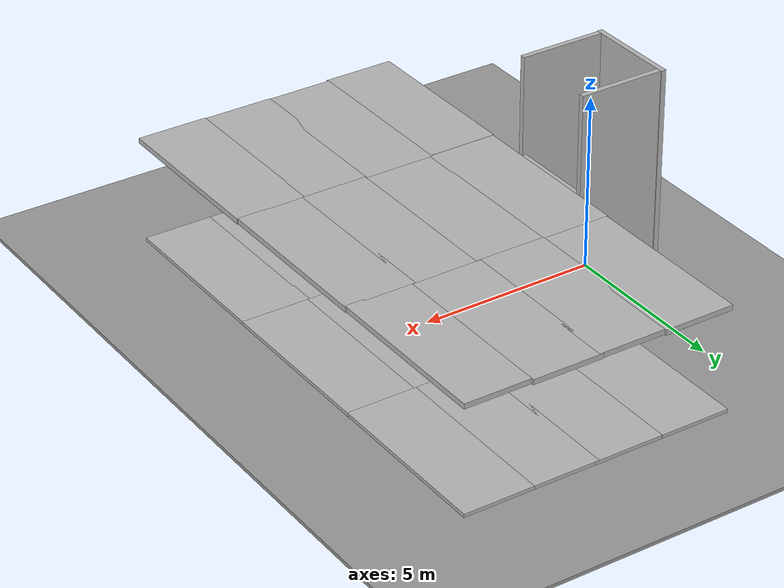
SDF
<sdf version="1.6">
 <world name="default">
  <light name="sun" type="directional">
   <pose>0 0 10 0 -0 0</pose>
   <diffuse>0.8 0.8 0.8 1</diffuse>
   <specular>0.2 0.2 0.2 1</specular>
   <attenuation>
    <range>1000</range>
    <constant>0.9</constant>
    <linear>0.01</linear>
    <quadratic>0.001</quadratic>
   </attenuation>
   <direction>-0.5 0.1 -0.9</direction>
  </light>
  <model name="ground_plane">
   <static>1</static>
   <link name="link">
    <collision name="collision">
     <geometry><plane><normal>0 0 1</normal><size>100 100</size></plane></geometry>
     <surface><friction><ode><mu>100</mu><mu2>50</mu2></ode></friction></surface>
    </collision>
    <visual name="visual">
     <cast_shadows>0</cast_shadows>
     <geometry><plane><normal>0 0 1</normal><size>100 100</size></plane></geometry>
     <material>
      <script><uri>file://media/materials/scripts/gazebo.material</uri><name>Gazebo/Grey</name></script>
     </material>
    </visual>
   </link>
  </model>
  <plugin name="elevator_event_plugin" filename="libSimEventsPlugin.so">
   <region><name>region1</name><volume><min>1.5 -1 0</min><max>2.5 1 1</max></volume></region>
   <region><name>region2</name><volume><min>1.5 -1 3</min><max>2.5 1 4</max></volume></region>
   <event>
    <name>region1_event</name>
    <type>occupied</type>
    <region>region1</region>
    <topic>~/elevator</topic>
    <msg_data>0</msg_data>
   </event>
   <event>
    <name>region2_event</name>
    <type>occupied</type>
    <region>region2</region>
    <topic>~/elevator</topic>
    <msg_data>1</msg_data>
   </event>
  </plugin>
  <model name="elevator">
   <pose>-0 0 0.075 0 -0 2e-06</pose>
   <link name="link">
    <inertial>
     <mass>800</mass>
     <inertia><ixx>1</ixx><ixy>0</ixy><ixz>0</ixz><iyy>1</iyy><iyz>0</iyz><izz>1</izz></inertia>
    </inertial>
    <collision name="floor_collision"><geometry><box><size>2.25 2.25 0.15</size></box></geometry></collision>
    <visual name="floor_visual"><geometry><box><size>2.25 2.25 0.15</size></box></geometry></visual>
    <collision name="wall1_collision">
     <pose>1.0745 0.5725 1.125 0 -0 0</pose>
     <geometry><box><size>0.1 1.15 2.25</size></box></geometry>
    </collision>
    <visual name="wall1_visual">
     <pose>1.0745 0.5725 1.125 0 -0 0</pose>
     <geometry><box><size>0.1 1.15 2.25</size></box></geometry>
     <material><script><name>Gazebo/Red</name><uri>__default__</uri></script></material>
    </visual>
    <collision name="wall2_collision">
     <pose>1.0745 -1.0625 1.125 0 -0 0</pose>
     <geometry><box><size>0.1 0.125 2.25</size></box></geometry>
    </collision>
    <visual name="wall2_visual">
     <pose>1.0745 -1.0625 1.125 0 -0 0</pose>
     <geometry><box><size>0.1 0.125 2.25</size></box></geometry>
     <material><script><name>Gazebo/Red</name><uri>__default__</uri></script></material>
    </visual>
   </link>
   <link name="door">
    <pose>1.0745 -0.5 1.125 0 -0 0</pose>
    <collision name="collision"><geometry><box><size>0.08 1 2.25</size></box></geometry></collision>
    <visual name="visual"><geometry><box><size>0.08 1 2.25</size></box></geometry></visual>
    <inertial>
     <inertia><ixx>1</ixx><ixy>0</ixy><ixz>0</ixz><iyy>1</iyy><iyz>0</iyz><izz>1</izz></inertia>
     <mass>1</mass>
    </inertial>
   </link>
   <joint name="door" type="prismatic">
    <parent>link</parent>
    <child>door</child>
    <axis>
     <xyz>0 1 0</xyz>
     <limit><lower>0</lower><upper>1</upper><effort>10</effort></limit>
     <dynamics>
      <damping>2</damping>
      <spring_reference>0</spring_reference>
      <spring_stiffness>0</spring_stiffness>
     </dynamics>
     <use_parent_model_frame>0</use_parent_model_frame>
    </axis>
   </joint>
   <joint name="lift" type="prismatic">
    <parent>world</parent>
    <child>link</child>
    <axis>
     <xyz>0 0 1</xyz>
     <limit><lower>0</lower><upper>10</upper><effort>100000</effort></limit>
     <dynamics>
      <damping>50</damping>
      <spring_reference>0</spring_reference>
      <spring_stiffness>0</spring_stiffness>
     </dynamics>
     <use_parent_model_frame>0</use_parent_model_frame>
    </axis>
    <physics>
     <ode><implicit_spring_damper>1</implicit_spring_damper><limit><cfm>0</cfm><erp>0.2</erp></limit></ode>
    </physics>
   </joint>
   <plugin name="elevator_plugin" filename="libgazebo_ros_elevator.so">
    <lift_joint>elevator::lift</lift_joint>
    <door_joint>elevator::door</door_joint>
    <floor_height>3.075</floor_height>
    <door_wait_time>10</door_wait_time>
    <topic>elevator</topic>
   </plugin>
  </model>
  <model name="elevator_shaft">
   <static>1</static>
   <link name="link">
    <collision name="shaft_wall1_collision">
     <pose>0 1.25 3 0 -0 0</pose>
     <geometry><box><size>2.5 0.15 6</size></box></geometry>
    </collision>
    <visual name="shaft_wall1_visual">
     <pose>0 1.25 3 0 -0 0</pose>
     <geometry><box><size>2.5 0.15 6</size></box></geometry>
    </visual>
    <collision name="shaft_wall2_collision">
     <pose>0 -1.25 3 0 -0 0</pose>
     <geometry><box><size>2.5 0.15 6</size></box></geometry>
    </collision>
    <visual name="shaft_wall2_visual">
     <pose>0 -1.25 3 0 -0 0</pose>
     <geometry><box><size>2.5 0.15 6</size></box></geometry>
    </visual>
    <collision name="shaft_wall3_collision">
     <pose>-1.25 0 3 0 -0 0</pose>
     <geometry><box><size>0.15 2.7 6</size></box></geometry>
    </collision>
    <visual name="shaft_wall3_visual">
     <pose>-1.25 0 3 0 -0 0</pose>
     <geometry><box><size>0.15 2.7 6</size></box></geometry>
    </visual>
    <collision name="floor0_collision">
     <pose>1.19 0 0.075 0 -0 0</pose>
     <geometry><box><size>0.12 2.5 0.15</size></box></geometry>
    </collision>
    <visual name="floor0_visual">
     <pose>1.19 0 0.075 0 -0 0</pose>
     <geometry><box><size>0.12 2.5 0.15</size></box></geometry>
    </visual>
    <collision name="floor1_collision">
     <pose>1.19 0 3.075 0 -0 0</pose>
     <geometry><box><size>0.12 2.5 0.15</size></box></geometry>
    </collision>
    <visual name="floor1_visual">
     <pose>1.19 0 3.075 0 -0 0</pose>
     <geometry><box><size>0.12 2.5 0.15</size></box></geometry>
    </visual>
   </link>
  </model>
  <model name="floor0">
   <pose>2.25 0 0.075 0 -0 0</pose>
   <static>1</static>
   <link name="link">
    <collision name="floor_collision"><geometry><box><size>2 5 0.15</size></box></geometry></collision>
    <visual name="floor_visual"><geometry><box><size>2 5 0.15</size></box></geometry></visual>
   </link>
  </model>
  <model name="floor1">
   <pose>2.25 0 3.075 0 -0 0</pose>
   <static>1</static>
   <link name="link">
    <collision name="floor_collision"><geometry><box><size>2 5 0.15</size></box></geometry></collision>
    <visual name="floor_visual"><geometry><box><size>2 5 0.15</size></box></geometry></visual>
   </link>
  </model>
  <gravity>0 0 -9.8</gravity>
  <magnetic_field>6e-06 2.3e-05 -4.2e-05</magnetic_field>
  <atmosphere type="adiabatic"/>
  <physics name="default_physics" default="0" type="ode">
   <max_step_size>0.001</max_step_size>
   <real_time_factor>1</real_time_factor>
   <real_time_update_rate>1000</real_time_update_rate>
  </physics>
  <scene><ambient>0.4 0.4 0.4 1</ambient><background>0.7 0.7 0.7 1</background><shadows>1</shadows></scene>
  <spherical_coordinates>
   <surface_model>EARTH_WGS84</surface_model>
   <latitude_deg>0</latitude_deg>
   <longitude_deg>0</longitude_deg>
   <elevation>0</elevation>
   <heading_deg>0</heading_deg>
  </spherical_coordinates>
  <model name="floor0_clone">
   <pose>4.17189 -0.007585 0.075 0 -0 0</pose>
   <static>1</static>
   <link name="link">
    <collision name="floor_collision"><geometry><box><size>2 5 0.15</size></box></geometry></collision>
    <visual name="floor_visual"><geometry><box><size>2 5 0.15</size></box></geometry></visual>
   </link>
  </model>
  <model name="floor0_clone_0">
   <pose>2.24536 -4.98703 0.075 0 -0 0</pose>
   <static>1</static>
   <link name="link">
    <collision name="floor_collision"><geometry><box><size>2 5 0.15</size></box></geometry></collision>
    <visual name="floor_visual"><geometry><box><size>2 5 0.15</size></box></geometry></visual>
   </link>
  </model>
  <model name="floor0_clone_0_clone">
   <pose>4.19308 -4.97596 0.075 0 -0 0</pose>
   <static>1</static>
   <link name="link">
    <collision name="floor_collision"><geometry><box><size>2 5 0.15</size></box></geometry></collision>
    <visual name="floor_visual"><geometry><box><size>2 5 0.15</size></box></geometry></visual>
   </link>
  </model>
  <model name="floor0_clone_clone">
   <pose>6.05985 0.013385 0.075 0 -0 0</pose>
   <static>1</static>
   <link name="link">
    <collision name="floor_collision"><geometry><box><size>2 5 0.15</size></box></geometry></collision>
    <visual name="floor_visual"><geometry><box><size>2 5 0.15</size></box></geometry></visual>
   </link>
  </model>
  <model name="floor0_clone_0_clone_clone">
   <pose>6.03713 -4.94229 0.075 0 -0 0</pose>
   <static>1</static>
   <link name="link">
    <collision name="floor_collision"><geometry><box><size>2 5 0.15</size></box></geometry></collision>
    <visual name="floor_visual"><geometry><box><size>2 5 0.15</size></box></geometry></visual>
   </link>
  </model>
  <model name="floor0_clone_1">
   <pose>2.24797 4.99718 0.075 0 -0 0</pose>
   <static>1</static>
   <link name="link">
    <collision name="floor_collision"><geometry><box><size>2 5 0.15</size></box></geometry></collision>
    <visual name="floor_visual"><geometry><box><size>2 5 0.15</size></box></geometry></visual>
   </link>
  </model>
  <model name="floor0_clone_2">
   <pose>4.24138 4.99404 0.075 0 -0 0</pose>
   <static>1</static>
   <link name="link">
    <collision name="floor_collision"><geometry><box><size>2 5 0.15</size></box></geometry></collision>
    <visual name="floor_visual"><geometry><box><size>2 5 0.15</size></box></geometry></visual>
   </link>
  </model>
  <model name="floor0_clone_3">
   <pose>6.12009 4.98805 0.075 0 -0 0</pose>
   <static>1</static>
   <link name="link">
    <collision name="floor_collision"><geometry><box><size>2 5 0.15</size></box></geometry></collision>
    <visual name="floor_visual"><geometry><box><size>2 5 0.15</size></box></geometry></visual>
   </link>
  </model>
  <model name="floor1_clone">
   <pose>4.21207 -0.053892 3.075 0 -0 0</pose>
   <static>1</static>
   <link name="link">
    <collision name="floor_collision"><geometry><box><size>2 5 0.15</size></box></geometry></collision>
    <visual name="floor_visual"><geometry><box><size>2 5 0.15</size></box></geometry></visual>
   </link>
  </model>
  <model name="floor1_clone_0">
   <pose>6.09182 -0.02465 3.075 0 -0 0</pose>
   <static>1</static>
   <link name="link">
    <collision name="floor_collision"><geometry><box><size>2 5 0.15</size></box></geometry></collision>
    <visual name="floor_visual"><geometry><box><size>2 5 0.15</size></box></geometry></visual>
   </link>
  </model>
  <model name="floor1_clone_1">
   <pose>6.08206 4.96332 3.075 0 -0 0</pose>
   <static>1</static>
   <link name="link">
    <collision name="floor_collision"><geometry><box><size>2 5 0.15</size></box></geometry></collision>
    <visual name="floor_visual"><geometry><box><size>2 5 0.15</size></box></geometry></visual>
   </link>
  </model>
  <model name="floor1_clone_2">
   <pose>4.18575 4.94337 3.075 0 -0 0</pose>
   <static>1</static>
   <link name="link">
    <collision name="floor_collision"><geometry><box><size>2 5 0.15</size></box></geometry></collision>
    <visual name="floor_visual"><geometry><box><size>2 5 0.15</size></box></geometry></visual>
   </link>
  </model>
  <model name="floor1_clone_3">
   <pose>2.28363 4.99193 3.075 0 -0 0</pose>
   <static>1</static>
   <link name="link">
    <collision name="floor_collision"><geometry><box><size>2 5 0.15</size></box></geometry></collision>
    <visual name="floor_visual"><geometry><box><size>2 5 0.15</size></box></geometry></visual>
   </link>
  </model>
  <model name="floor1_clone_4">
   <pose>2.21772 -5.00928 3.075 0 -0 0</pose>
   <static>1</static>
   <link name="link">
    <collision name="floor_collision"><geometry><box><size>2 5 0.15</size></box></geometry></collision>
    <visual name="floor_visual"><geometry><box><size>2 5 0.15</size></box></geometry></visual>
   </link>
  </model>
  <model name="floor1_clone_5">
   <pose>4.19353 -4.95699 3.075 0 -0 0</pose>
   <static>1</static>
   <link name="link">
    <collision name="floor_collision"><geometry><box><size>2 5 0.15</size></box></geometry></collision>
    <visual name="floor_visual"><geometry><box><size>2 5 0.15</size></box></geometry></visual>
   </link>
  </model>
  <model name="floor1_clone_6">
   <pose>6.03663 -4.98109 3.075 0 -0 0</pose>
   <static>1</static>
   <link name="link">
    <collision name="floor_collision"><geometry><box><size>2 5 0.15</size></box></geometry></collision>
    <visual name="floor_visual"><geometry><box><size>2 5 0.15</size></box></geometry></visual>
   </link>
  </model>
  <model name="floor0_clone_0_clone_clone_clone">
   <pose>8.00207 -4.9467 0.075 0 -0 0</pose>
   <static>1</static>
   <link name="link">
    <collision name="floor_collision"><geometry><box><size>2 5 0.15</size></box></geometry></collision>
    <visual name="floor_visual"><geometry><box><size>2 5 0.15</size></box></geometry></visual>
   </link>
  </model>
  <model name="floor0_clone_clone_clone">
   <pose>8.00778 0.047332 0.075 0 -0 0</pose>
   <static>1</static>
   <link name="link">
    <collision name="floor_collision"><geometry><box><size>2 5 0.15</size></box></geometry></collision>
    <visual name="floor_visual"><geometry><box><size>2 5 0.15</size></box></geometry></visual>
   </link>
  </model>
  <model name="floor0_clone_3_clone">
   <pose>8.00301 4.98876 0.075 0 -0 0</pose>
   <static>1</static>
   <link name="link">
    <collision name="floor_collision"><geometry><box><size>2 5 0.15</size></box></geometry></collision>
    <visual name="floor_visual"><geometry><box><size>2 5 0.15</size></box></geometry></visual>
   </link>
  </model>
  <model name="floor1_clone_0_clone">
   <pose>7.98898 -0.037832 3.075 0 -0 0</pose>
   <static>1</static>
   <link name="link">
    <collision name="floor_collision"><geometry><box><size>2 5 0.15</size></box></geometry></collision>
    <visual name="floor_visual"><geometry><box><size>2 5 0.15</size></box></geometry></visual>
   </link>
  </model>
  <model name="floor1_clone_6_clone">
   <pose>8.01438 -5.01211 3.075 0 -0 0</pose>
   <static>1</static>
   <link name="link">
    <collision name="floor_collision"><geometry><box><size>2 5 0.15</size></box></geometry></collision>
    <visual name="floor_visual"><geometry><box><size>2 5 0.15</size></box></geometry></visual>
   </link>
  </model>
  <model name="floor1_clone_0_clone_clone">
   <pose>7.96185 4.89706 3.075 0 -0 0</pose>
   <static>1</static>
   <link name="link">
    <collision name="floor_collision"><geometry><box><size>2 5 0.15</size></box></geometry></collision>
    <visual name="floor_visual"><geometry><box><size>2 5 0.15</size></box></geometry></visual>
   </link>
  </model>
  <model name="ground_plane_0">
   <static>1</static>
   <link name="link">
    <collision name="collision">
     <geometry><plane><normal>0 0 1</normal><size>100 100</size></plane></geometry>
     <surface>
      <contact><collide_bitmask>65535</collide_bitmask></contact>
      <friction><ode><mu>100</mu><mu2>50</mu2></ode></friction>
     </surface>
    </collision>
    <visual name="visual">
     <cast_shadows>0</cast_shadows>
     <geometry><plane><normal>0 0 1</normal><size>100 100</size></plane></geometry>
     <material>
      <script><uri>file://media/materials/scripts/gazebo.material</uri><name>Gazebo/Grey</name></script>
     </material>
    </visual>
   </link>
   <pose>-4.76356 -11.0741 0 0 -0 0</pose>
  </model>
 </world>
</sdf>
